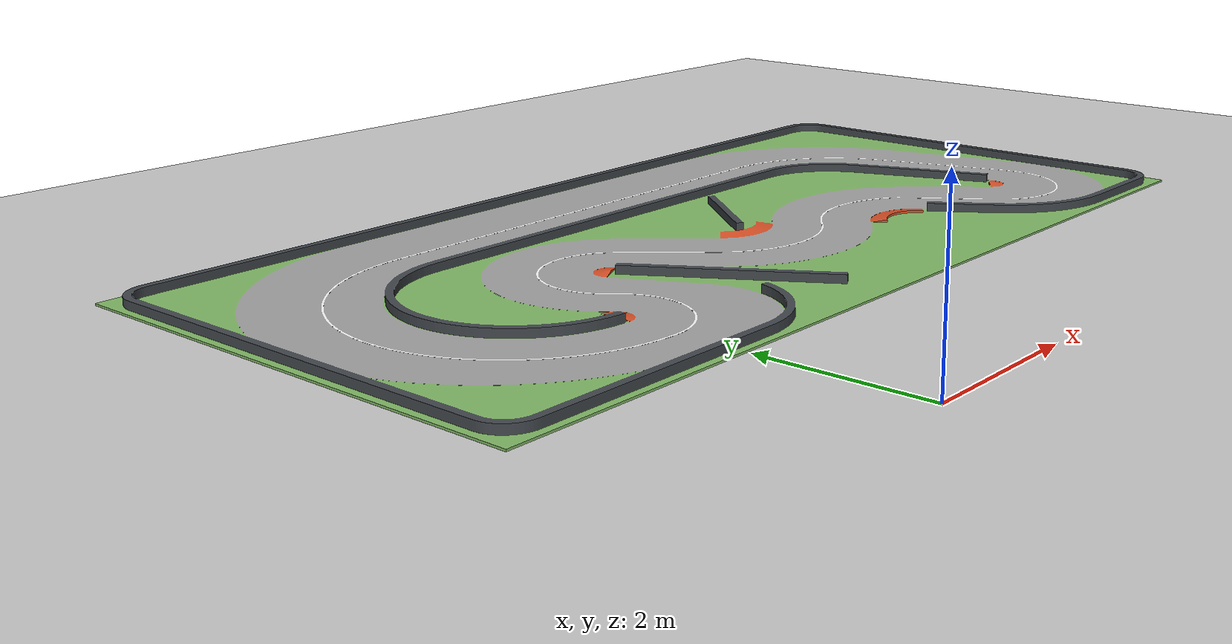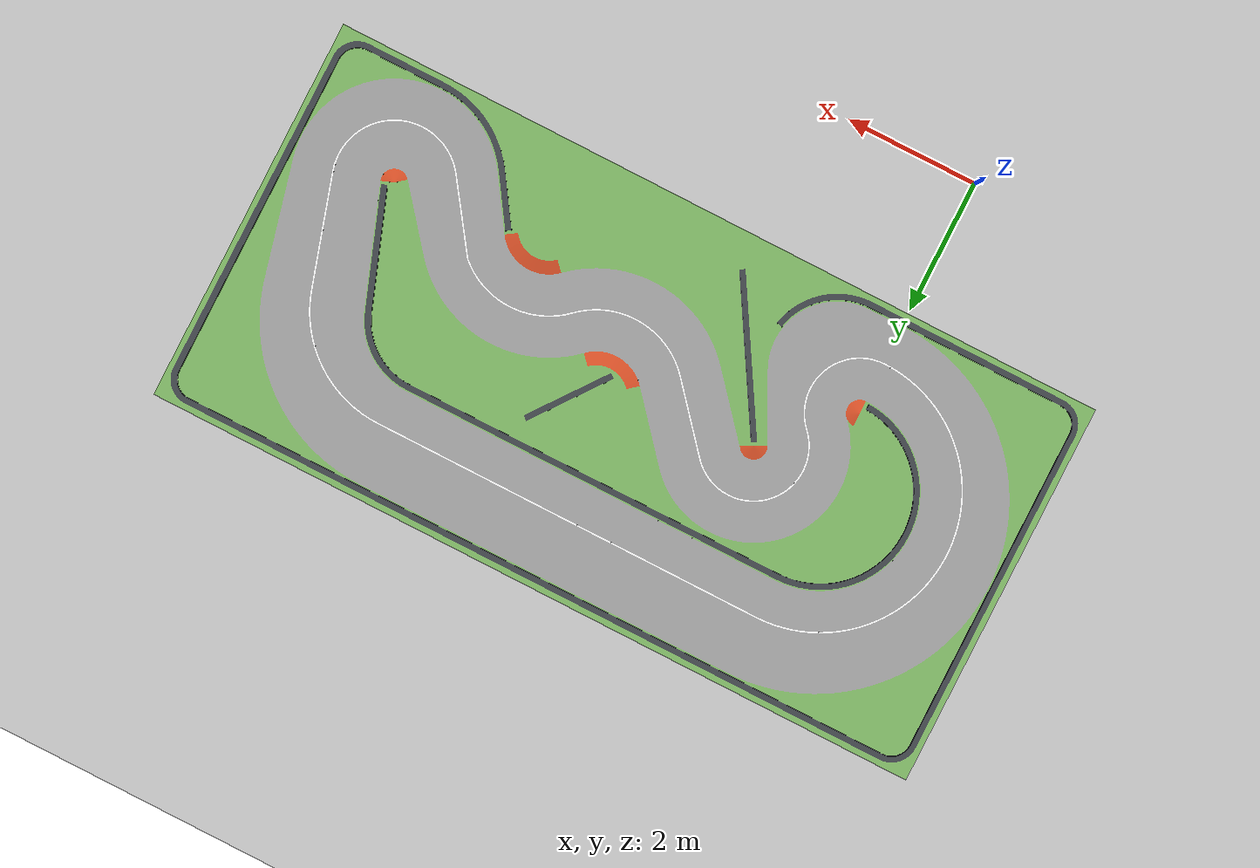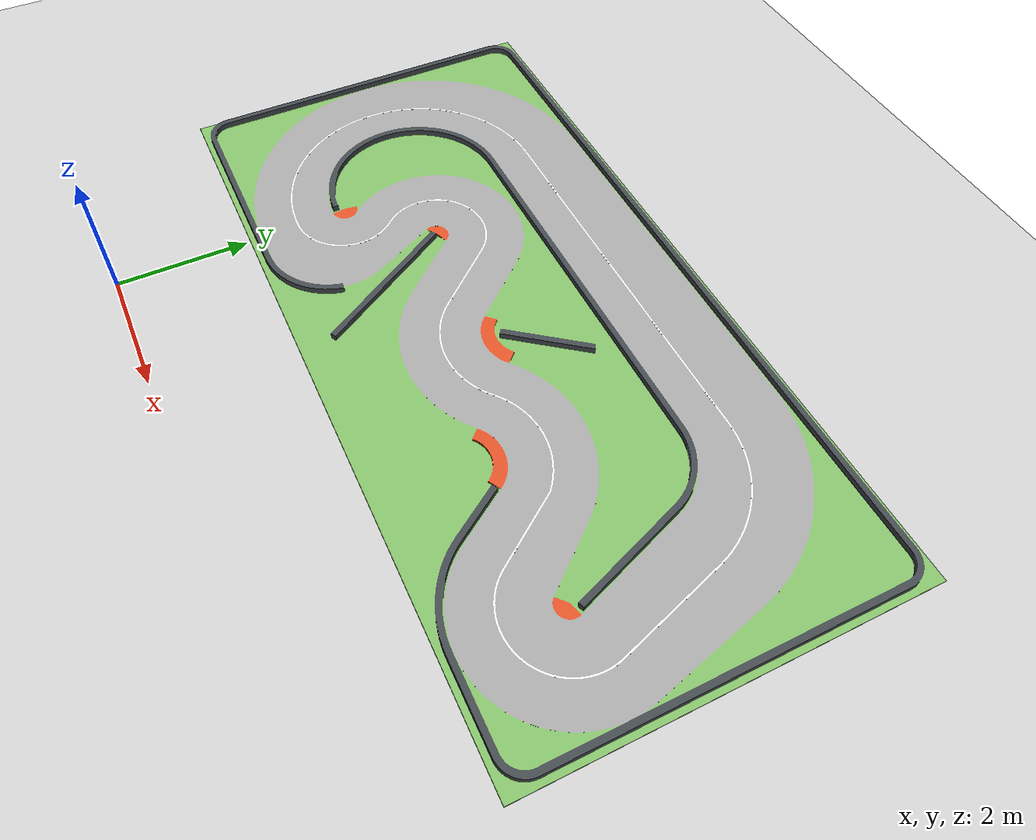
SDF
<sdf version='1.10'>
  <world name='default'>
    <plugin name='gz::sim::systems::Physics' filename='gz-sim-physics-system'/>
    <plugin name='gz::sim::systems::UserCommands' filename='gz-sim-user-commands-system'/>
    <plugin name='gz::sim::systems::SceneBroadcaster' filename='gz-sim-scene-broadcaster-system'/>
    <plugin name='gz::sim::systems::Sensors' filename='gz-sim-sensors-system'>
      <render_engine>ogre2</render_engine>
    </plugin>
    <plugin name='gz::sim::systems::Imu' filename='gz-sim-imu-system'/>
    <scene>
      <shadows>false</shadows>
      <ambient>0.400000006 0.400000006 0.400000006 1</ambient>
      <background>0.699999988 0.699999988 0.699999988 1</background>
    </scene>
    <gui fullscreen='false'>
      <camera name='user_camera'>
        <pose>0.31965399999999999 -0.23500199999999999 9.2944099999999992
              4.5678287392442307e-17 1.5138000000000147 0.0095990000000000311</pose>
        <view_controller>orbit</view_controller>
        <projection_type>perspective</projection_type>
      </camera>
    </gui>
    <physics type='ode'>
      <real_time_update_rate>1000</real_time_update_rate>
      <max_step_size>0.001</max_step_size>
      <real_time_factor>1</real_time_factor>
      <ode>
        <solver>
          <type>quick</type>
          <iters>150</iters>
          <precon_iters>0</precon_iters>
          <sor>1.3999999999999999</sor>
          <use_dynamic_moi_rescaling>true</use_dynamic_moi_rescaling>
        </solver>
        <constraints>
          <cfm>1.0000000000000001e-05</cfm>
          <erp>0.20000000000000001</erp>
          <contact_max_correcting_vel>2000</contact_max_correcting_vel>
          <contact_surface_layer>0.01</contact_surface_layer>
        </constraints>
      </ode>
    </physics>
    <gravity>0 0 -9.8000000000000007</gravity>
    <atmosphere type='adiabatic'/>
    <include>
      <uri>https://fuel.gazebosim.org/1.0/OpenRobotics/models/Ground Plane</uri>
      <name>ground_plane</name>
      <pose>0 0 0 0 0 0</pose>
    </include>
    <model name='track'>
      <link name='link'>
        <visual name='visual'>
          <geometry>
            <mesh>
              <uri>model://track.dae</uri>
            </mesh>
          </geometry>
        </visual>

        <collision name='collision'>
          <geometry>
            <mesh>
              <uri>model://track.dae</uri>
            </mesh>
          </geometry>
        </collision>

        <pose>0 0 0 0 0 0</pose>

        <inertial>
          <pose>0 0 0 0 0 0</pose>
          <mass>1</mass>
          <inertia>
            <ixx>1</ixx>
            <ixy>0</ixy>
            <ixz>0</ixz>
            <iyy>1</iyy>
            <iyz>0</iyz>
            <izz>1</izz>
          </inertia>
        </inertial>
        <enable_wind>false</enable_wind>
      </link>
      <pose>3 5 0.01 0 0 0</pose>
      <static>true</static>
      <self_collide>false</self_collide>
    </model>
    <light name='sun' type='directional'>
      <pose>0 0 10 0 0 0</pose>
      <cast_shadows>true</cast_shadows>
      <intensity>1</intensity>
      <direction>-0.5 0.1 -0.9</direction>
      <diffuse>0.800000012 0.800000012 0.800000012 1</diffuse>
      <specular>0.200000003 0.200000003 0.200000003 1</specular>
      <attenuation>
        <range>1000</range>
        <linear>0.01</linear>
        <constant>0.9</constant>
        <quadratic>0.001</quadratic>
      </attenuation>
    </light>

  </world>
</sdf>
